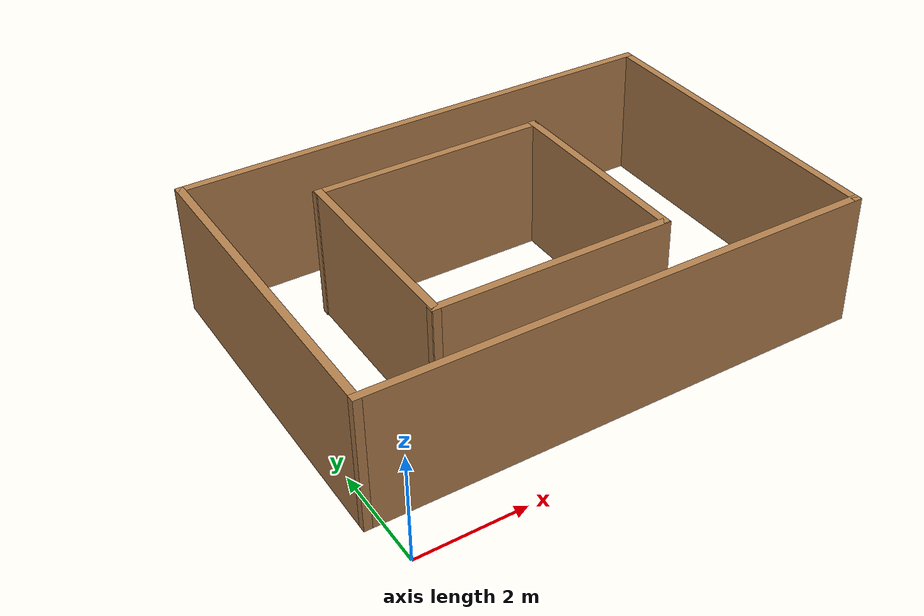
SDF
<?xml version='1.0'?>
<sdf version='1.6'>
  <model name='square'>
    <pose frame=''>4.4357 4.11031 0 0 -0 0</pose>
    <link name='Wall_15'>
      <collision name='Wall_15_Collision'>
        <geometry>
          <box>
            <size>9.5 0.15 2.5</size>
          </box>
        </geometry>
        <pose frame=''>0 0 1.25 0 -0 0</pose>
      </collision>
      <visual name='Wall_15_Visual'>
        <pose frame=''>0 0 1.25 0 -0 0</pose>
        <geometry>
          <box>
            <size>9.5 0.15 2.5</size>
          </box>
        </geometry>
        <material>
          <script>
            <uri>file://media/materials/scripts/gazebo.material</uri>
            <name>Gazebo/Wood</name>
          </script>
          <ambient>1 1 1 1</ambient>
        </material>
        <meta>
          <layer>0</layer>
        </meta>
      </visual>
      <pose frame=''>-1e-06 3.175 0 0 -0 0</pose>
    </link>
    <link name='Wall_16'>
      <collision name='Wall_16_Collision'>
        <geometry>
          <box>
            <size>6.5 0.15 2.5</size>
          </box>
        </geometry>
        <pose frame=''>0 0 1.25 0 -0 0</pose>
      </collision>
      <visual name='Wall_16_Visual'>
        <pose frame=''>0 0 1.25 0 -0 0</pose>
        <geometry>
          <box>
            <size>6.5 0.15 2.5</size>
          </box>
        </geometry>
        <material>
          <script>
            <uri>file://media/materials/scripts/gazebo.material</uri>
            <name>Gazebo/Wood</name>
          </script>
          <ambient>1 1 1 1</ambient>
        </material>
        <meta>
          <layer>0</layer>
        </meta>
      </visual>
      <pose frame=''>4.675 0 0 0 0 -1.5708</pose>
    </link>
    <link name='Wall_17'>
      <collision name='Wall_17_Collision'>
        <geometry>
          <box>
            <size>9.5 0.15 2.5</size>
          </box>
        </geometry>
        <pose frame=''>0 0 1.25 0 -0 0</pose>
      </collision>
      <visual name='Wall_17_Visual'>
        <pose frame=''>0 0 1.25 0 -0 0</pose>
        <geometry>
          <box>
            <size>9.5 0.15 2.5</size>
          </box>
        </geometry>
        <material>
          <script>
            <uri>file://media/materials/scripts/gazebo.material</uri>
            <name>Gazebo/Wood</name>
          </script>
          <ambient>1 1 1 1</ambient>
        </material>
        <meta>
          <layer>0</layer>
        </meta>
      </visual>
      <pose frame=''>-1e-06 -3.175 0 0 -0 3.14159</pose>
    </link>
    <link name='Wall_18'>
      <collision name='Wall_18_Collision'>
        <geometry>
          <box>
            <size>6.5 0.15 2.5</size>
          </box>
        </geometry>
        <pose frame=''>0 0 1.25 0 -0 0</pose>
      </collision>
      <visual name='Wall_18_Visual'>
        <pose frame=''>0 0 1.25 0 -0 0</pose>
        <geometry>
          <box>
            <size>6.5 0.15 2.5</size>
          </box>
        </geometry>
        <material>
          <script>
            <uri>file://media/materials/scripts/gazebo.material</uri>
            <name>Gazebo/Wood</name>
          </script>
          <ambient>1 1 1 1</ambient>
        </material>
        <meta>
          <layer>0</layer>
        </meta>
      </visual>
      <pose frame=''>-4.675 0 0 0 -0 1.5708</pose>
    </link>
    <link name='Wall_20'>
      <collision name='Wall_20_Collision'>
        <geometry>
          <box>
            <size>4 0.15 2.5</size>
          </box>
        </geometry>
        <pose frame=''>0 0 1.25 0 -0 0</pose>
      </collision>
      <visual name='Wall_20_Visual'>
        <pose frame=''>0 0 1.25 0 -0 0</pose>
        <geometry>
          <box>
            <size>4 0.15 2.5</size>
          </box>
        </geometry>
        <material>
          <script>
            <uri>file://media/materials/scripts/gazebo.material</uri>
            <name>Gazebo/Wood</name>
          </script>
          <ambient>1 1 1 1</ambient>
        </material>
        <meta>
          <layer>0</layer>
        </meta>
      </visual>
      <pose frame=''>-2.7399 -0.075415 0 0 0 -1.5708</pose>
    </link>
    <link name='Wall_21'>
      <collision name='Wall_21_Collision'>
        <geometry>
          <box>
            <size>4.48864 0.15 2.5</size>
          </box>
        </geometry>
        <pose frame=''>0 0 1.25 0 -0 0</pose>
      </collision>
      <visual name='Wall_21_Visual'>
        <pose frame=''>0 0 1.25 0 -0 0</pose>
        <geometry>
          <box>
            <size>4.48864 0.15 2.5</size>
          </box>
        </geometry>
        <material>
          <script>
            <uri>file://media/materials/scripts/gazebo.material</uri>
            <name>Gazebo/Wood</name>
          </script>
          <ambient>1 1 1 1</ambient>
        </material>
        <meta>
          <layer>0</layer>
        </meta>
      </visual>
      <pose frame=''>-0.590691 -2.00041 0 0 -0 0</pose>
    </link>
    <link name='Wall_22'>
      <collision name='Wall_22_Collision'>
        <geometry>
          <box>
            <size>4 0.15 2.5</size>
          </box>
        </geometry>
        <pose frame=''>0 0 1.25 0 -0 0</pose>
      </collision>
      <visual name='Wall_22_Visual'>
        <pose frame=''>0 0 1.25 0 -0 0</pose>
        <geometry>
          <box>
            <size>4 0.15 2.5</size>
          </box>
        </geometry>
        <material>
          <script>
            <uri>file://media/materials/scripts/gazebo.material</uri>
            <name>Gazebo/Wood</name>
          </script>
          <ambient>1 1 1 1</ambient>
        </material>
        <meta>
          <layer>0</layer>
        </meta>
      </visual>
      <pose frame=''>1.57863 -0.055301 0 0 -0 1.5708</pose>
    </link>
    <link name='Wall_23'>
      <collision name='Wall_23_Collision'>
        <geometry>
          <box>
            <size>4.48864 0.15 2.5</size>
          </box>
        </geometry>
        <pose frame=''>0 0 1.25 0 -0 0</pose>
      </collision>
      <visual name='Wall_23_Visual'>
        <pose frame=''>0 0 1.25 0 -0 0</pose>
        <geometry>
          <box>
            <size>4.48864 0.15 2.5</size>
          </box>
        </geometry>
        <material>
          <script>
            <uri>file://media/materials/scripts/gazebo.material</uri>
            <name>Gazebo/Wood</name>
          </script>
          <ambient>1 1 1 1</ambient>
        </material>
        <meta>
          <layer>0</layer>
        </meta>
      </visual>
      <pose frame=''>-0.590691 1.84959 0 0 -0 3.14159</pose>
    </link>
    <static>1</static>
  </model>
</sdf>
